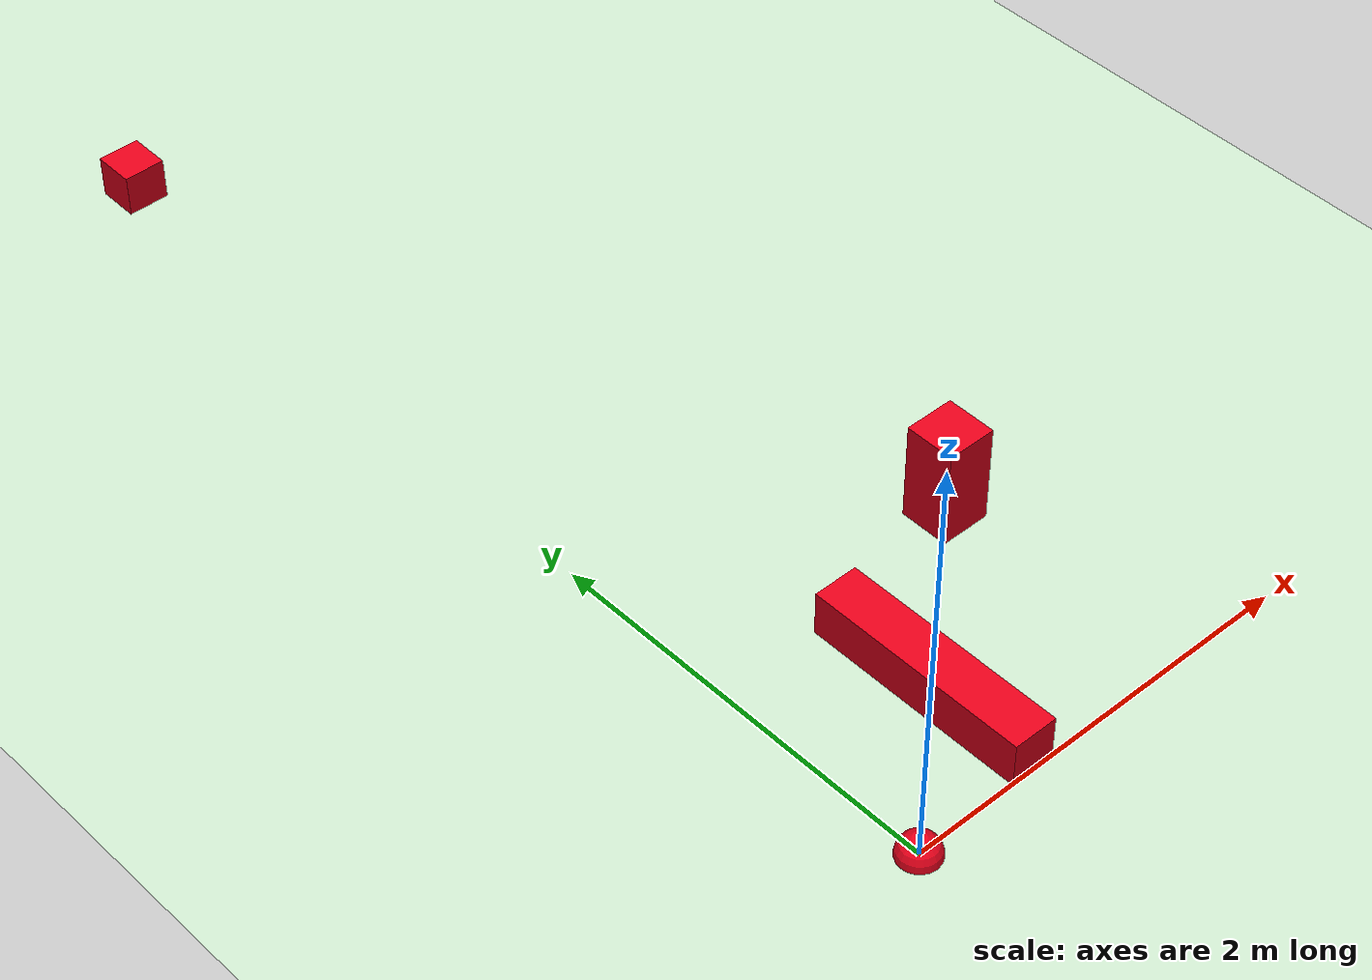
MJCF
<mujoco model="ball_model">

    <default>
        <joint armature="0.001" damping=".01" />
        <geom density="0.05" conaffinity="1" condim="3" contype="1" friction=".4 .1 .1" rgba="0.8 0.6 .4 1" solimp="0.0 0.8 0.01" solref="0.02 1"/>
    </default>
    <option  iterations="50" tolerance="1e-10" solver="Newton" jacobian="dense" cone="pyramidal"/>
        <option noslip_iterations="3"/>

    <size nconmax="50" njmax="200" nstack="10000"/>

    <compiler angle="degree" coordinate="local" inertiafromgeom="true" />

    <!-- 텍스처와 재질 정의 -->
    <asset>
        <texture builtin="gradient" height="100" rgb1="1 1 1" rgb2="0 0 0" type="skybox" width="100"/>
        <texture builtin="flat" height="1278" mark="cross" markrgb="1 1 1" name="texgeom" random="0.01" rgb1="0.8 0.6 0.4" rgb2="0.8 0.6 0.4" type="cube" width="127"/>
        <texture builtin="checker" height="100" name="texplane" rgb1="0 0 0" rgb2="0.8 0.8 0.8" type="2d" width="100"/>
        <material name="MatPlane" reflectance="0.5" shininess="1" specular="1" texrepeat="60 60" texture="texplane"/>
        <material name="geom" texture="texgeom" texuniform="true"/>
    </asset>
    <option gravity="0 0 -9.8"/>

    <worldbody>
        <!-- 조명 pos 위치 dir 방향 diffuse 확산광(빛이 고르게 퍼지도록 ) specular 반사광 ambient 주변(주변이 밝아지도록)-->
        <light cutoff="100" diffuse="1 1 1" dir="-0 0 -1.3" directional="true" exponent="1" pos="0 0 1.3" specular=".1 .1 .1"/>
        <geom conaffinity="1" condim="3" material="MatPlane" name="floor" pos="0 0 0" rgba="0.8 0.9 0.8 1" size="40 40 40" type="plane"/>
        <!-- if you want to move the box, then the box should need joint-->

        <body name = "box2" pos="0 0 0" euler = "0 0 0">
            <joint name = "target"  type="free" />
            <geom type="sphere" size=".1 .1 .1" rgba = "0.9 0 0.1 1"/>
            <inertial pos="0 0 0" mass="1" diaginertia="1 1 1"/>
        </body>

        <body name ="asdf" pos="0 5 .3" euler = "0 0 0">
            <joint name = "joint1"  type="slide" axis="1 0 0"   />
            <geom name = "box1" type="box" size=".1 .1 .1" rgba = "0.9 0 0.1 1"/>
            <inertial pos="0 0 0" mass="2" diaginertia=".01 .01 .01"/>
        </body>

        <body name ="asdf2" pos="0 0 1" euler = "0 0 0">
            <joint name = "joint2"  type="hinge" axis="1 0 0"   />
            <joint name = "joint3"  type="hinge" axis="0 1 0"   />
            <joint name = "joint4"  type="hinge" axis="0 0 1"   />
            <geom name = "box2" type="box" size=".1 .5 .1" rgba = "0.9 0 0.1 1"/>
            <body name ="asdf4" pos="0 0 1" euler = "0 0 0">
                <joint name = "joint5"  type="hinge" axis="0 0 1"   />
                <geom name = "box4" type="box" size="0.1 0.1 .2" rgba = "0.9 0 0.1 1"/>
            </body>
        </body>

        <!-- but only the header have the free joint then byproducts move along the header-->

    </worldbody>

    <actuator>
        <motor joint="joint2" />
        <motor joint="joint3" />

    </actuator>
</mujoco>
